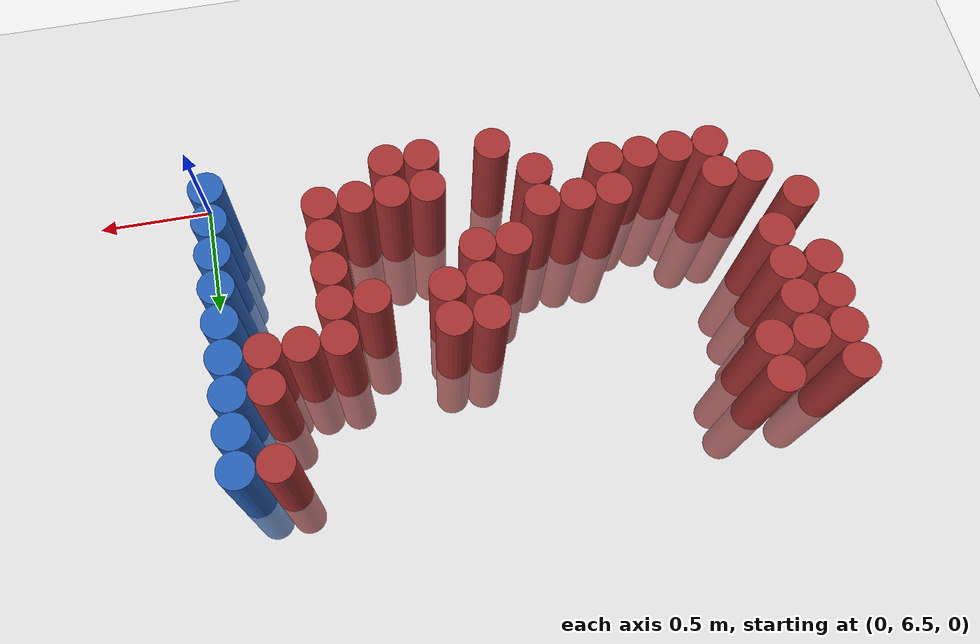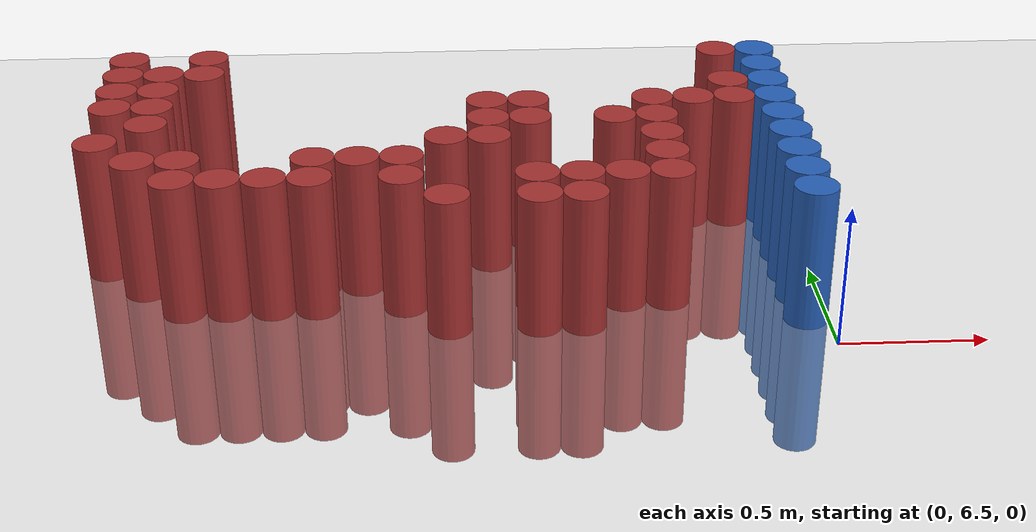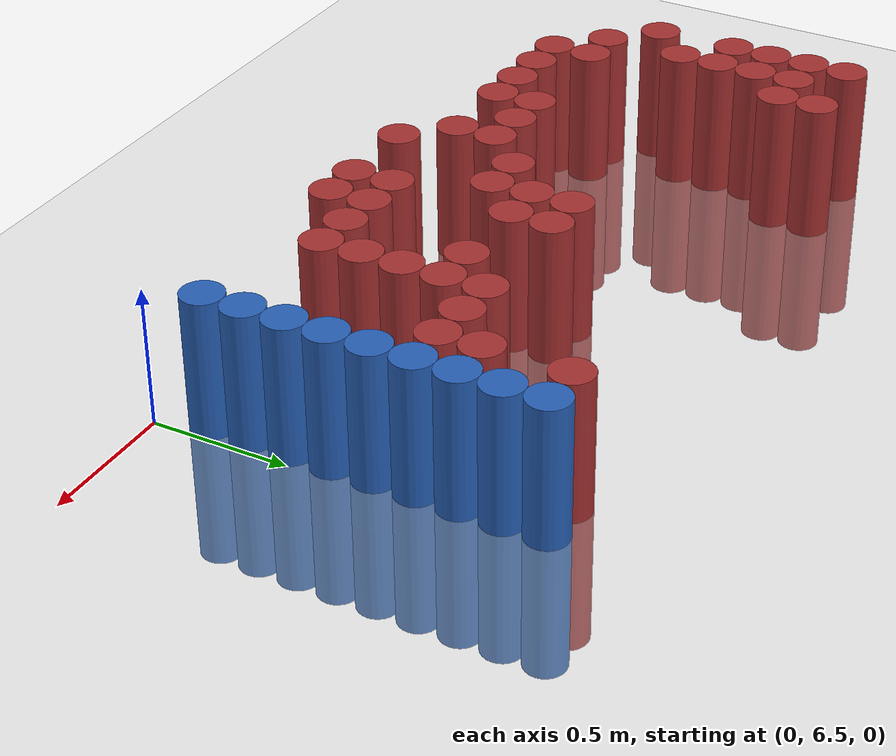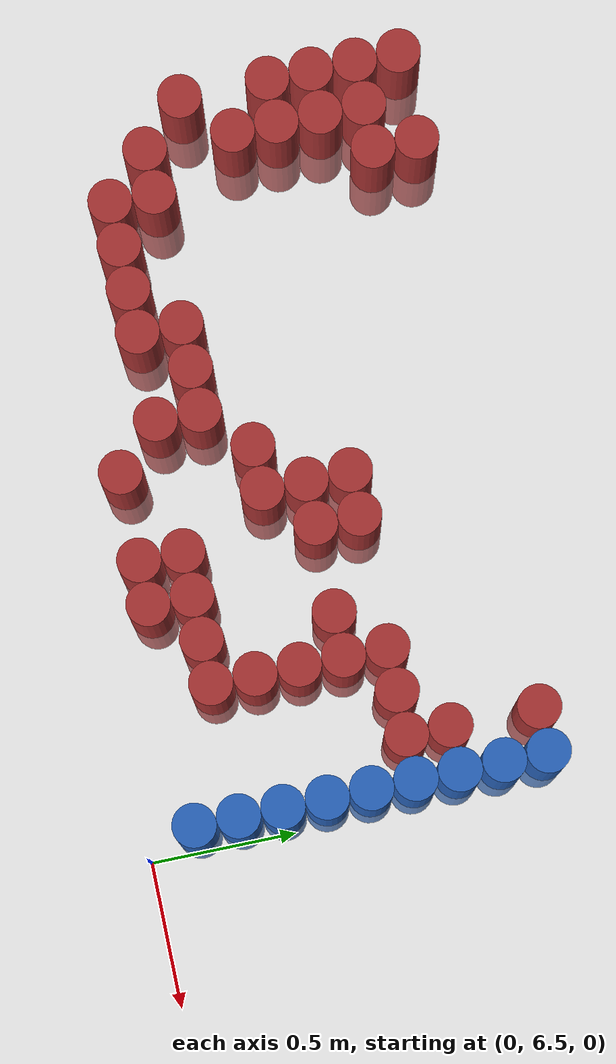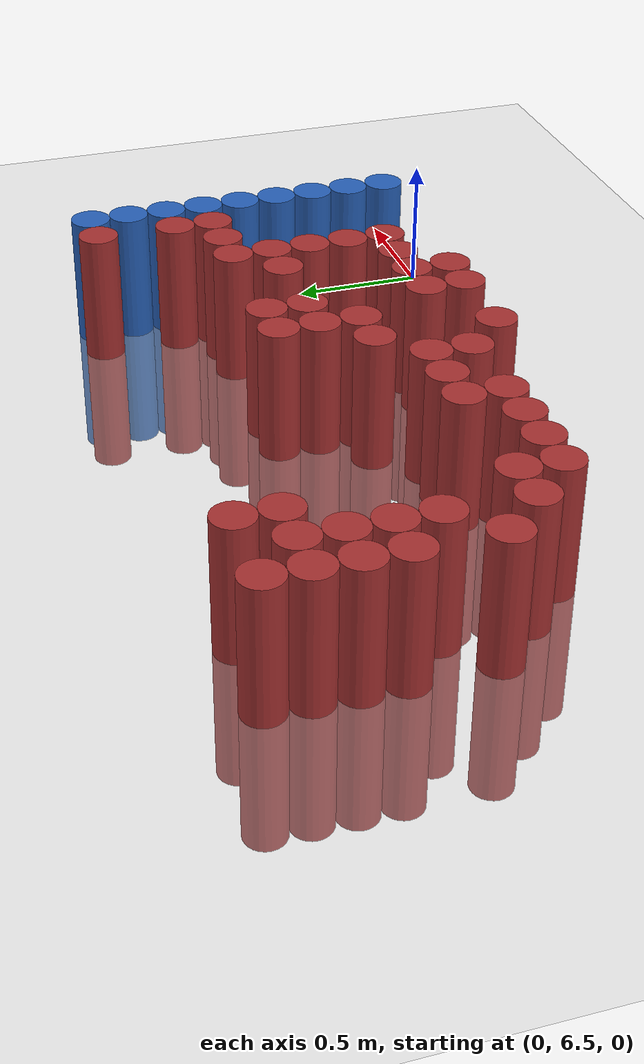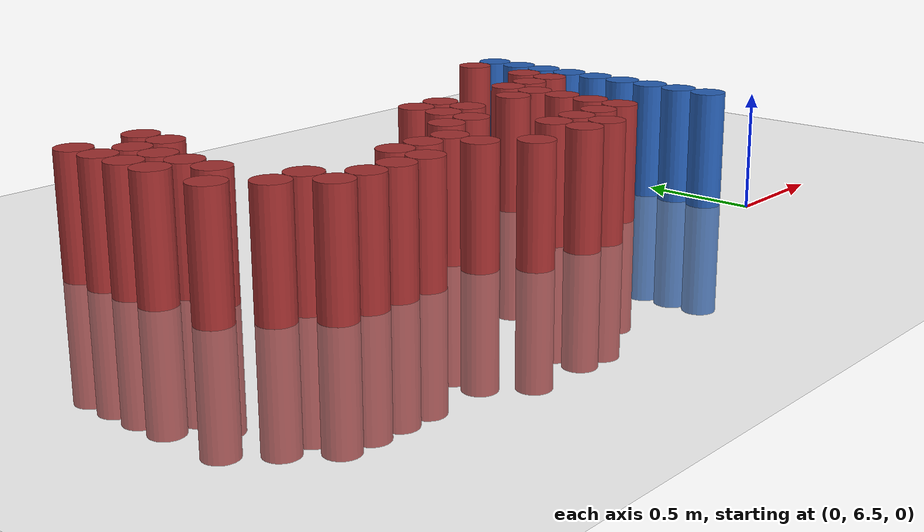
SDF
<sdf version="1.6">
 <world name="default">
  <model name="ground_plane">
   <static>1</static>
   <link name="link">
    <collision name="collision">
     <geometry><plane><normal>0 0 1</normal><size>100 100</size></plane></geometry>
     <surface><friction><ode><mu>100</mu><mu2>50</mu2></ode></friction></surface>
    </collision>
    <visual name="visual">
     <cast_shadows>0</cast_shadows>
     <geometry><plane><normal>0 0 1</normal><size>100 100</size></plane></geometry>
     <material>
      <script><uri>file://media/materials/scripts/gazebo.material</uri><name>Gazebo/Grey</name></script>
     </material>
    </visual>
   </link>
  </model>
  <model name="unit_cylinder_171">
   <static>1</static>
   <pose>-2.475000 7.125000 0.000000 0.000000 0.000000 0.000000</pose>
   <link name="link">
    <inertial>
     <mass>1</mass>
     <inertia><ixx>0.145833</ixx><ixy>0</ixy><ixz>0</ixz><iyy>0.145833</iyy><iyz>0</iyz><izz>0.125</izz></inertia>
    </inertial>
    <collision name="collision">
     <geometry><cylinder><radius>0.075000</radius><length>1</length></cylinder></geometry>
    </collision>
    <visual name="visual">
     <geometry><cylinder><radius>0.075000</radius><length>1</length></cylinder></geometry>
     <material>
      <ambient>0.648000 0.192000 0.192000 1</ambient>
      <diffuse>0.648000 0.192000 0.192000 1</diffuse>
     </material>
     <material>
      <script><name>Gazebo/Grey</name><uri>file://media/materials/scripts/gazebo.material</uri></script>
     </material>
    </visual>
   </link>
  </model>
  <model name="unit_cylinder_172">
   <static>1</static>
   <pose>-2.475000 7.425000 0.000000 0.000000 0.000000 0.000000</pose>
   <link name="link">
    <inertial>
     <mass>1</mass>
     <inertia><ixx>0.145833</ixx><ixy>0</ixy><ixz>0</ixz><iyy>0.145833</iyy><iyz>0</iyz><izz>0.125</izz></inertia>
    </inertial>
    <collision name="collision">
     <geometry><cylinder><radius>0.075000</radius><length>1</length></cylinder></geometry>
    </collision>
    <visual name="visual">
     <geometry><cylinder><radius>0.075000</radius><length>1</length></cylinder></geometry>
     <material>
      <ambient>0.648000 0.192000 0.192000 1</ambient>
      <diffuse>0.648000 0.192000 0.192000 1</diffuse>
     </material>
     <material>
      <script><name>Gazebo/Grey</name><uri>file://media/materials/scripts/gazebo.material</uri></script>
     </material>
    </visual>
   </link>
  </model>
  <model name="unit_cylinder_173">
   <static>1</static>
   <pose>-2.475000 7.575000 0.000000 0.000000 0.000000 0.000000</pose>
   <link name="link">
    <inertial>
     <mass>1</mass>
     <inertia><ixx>0.145833</ixx><ixy>0</ixy><ixz>0</ixz><iyy>0.145833</iyy><iyz>0</iyz><izz>0.125</izz></inertia>
    </inertial>
    <collision name="collision">
     <geometry><cylinder><radius>0.075000</radius><length>1</length></cylinder></geometry>
    </collision>
    <visual name="visual">
     <geometry><cylinder><radius>0.075000</radius><length>1</length></cylinder></geometry>
     <material>
      <ambient>0.648000 0.192000 0.192000 1</ambient>
      <diffuse>0.648000 0.192000 0.192000 1</diffuse>
     </material>
     <material>
      <script><name>Gazebo/Grey</name><uri>file://media/materials/scripts/gazebo.material</uri></script>
     </material>
    </visual>
   </link>
  </model>
  <model name="unit_cylinder_174">
   <static>1</static>
   <pose>-2.475000 7.725000 0.000000 0.000000 0.000000 0.000000</pose>
   <link name="link">
    <inertial>
     <mass>1</mass>
     <inertia><ixx>0.145833</ixx><ixy>0</ixy><ixz>0</ixz><iyy>0.145833</iyy><iyz>0</iyz><izz>0.125</izz></inertia>
    </inertial>
    <collision name="collision">
     <geometry><cylinder><radius>0.075000</radius><length>1</length></cylinder></geometry>
    </collision>
    <visual name="visual">
     <geometry><cylinder><radius>0.075000</radius><length>1</length></cylinder></geometry>
     <material>
      <ambient>0.648000 0.192000 0.192000 1</ambient>
      <diffuse>0.648000 0.192000 0.192000 1</diffuse>
     </material>
     <material>
      <script><name>Gazebo/Grey</name><uri>file://media/materials/scripts/gazebo.material</uri></script>
     </material>
    </visual>
   </link>
  </model>
  <model name="unit_cylinder_175">
   <static>1</static>
   <pose>-2.475000 7.875000 0.000000 0.000000 0.000000 0.000000</pose>
   <link name="link">
    <inertial>
     <mass>1</mass>
     <inertia><ixx>0.145833</ixx><ixy>0</ixy><ixz>0</ixz><iyy>0.145833</iyy><iyz>0</iyz><izz>0.125</izz></inertia>
    </inertial>
    <collision name="collision">
     <geometry><cylinder><radius>0.075000</radius><length>1</length></cylinder></geometry>
    </collision>
    <visual name="visual">
     <geometry><cylinder><radius>0.075000</radius><length>1</length></cylinder></geometry>
     <material>
      <ambient>0.648000 0.192000 0.192000 1</ambient>
      <diffuse>0.648000 0.192000 0.192000 1</diffuse>
     </material>
     <material>
      <script><name>Gazebo/Grey</name><uri>file://media/materials/scripts/gazebo.material</uri></script>
     </material>
    </visual>
   </link>
  </model>
  <model name="unit_cylinder_182">
   <static>1</static>
   <pose>-2.325000 6.975000 0.000000 0.000000 0.000000 0.000000</pose>
   <link name="link">
    <inertial>
     <mass>1</mass>
     <inertia><ixx>0.145833</ixx><ixy>0</ixy><ixz>0</ixz><iyy>0.145833</iyy><iyz>0</iyz><izz>0.125</izz></inertia>
    </inertial>
    <collision name="collision">
     <geometry><cylinder><radius>0.075000</radius><length>1</length></cylinder></geometry>
    </collision>
    <visual name="visual">
     <geometry><cylinder><radius>0.075000</radius><length>1</length></cylinder></geometry>
     <material>
      <ambient>0.648000 0.192000 0.192000 1</ambient>
      <diffuse>0.648000 0.192000 0.192000 1</diffuse>
     </material>
     <material>
      <script><name>Gazebo/Grey</name><uri>file://media/materials/scripts/gazebo.material</uri></script>
     </material>
    </visual>
   </link>
  </model>
  <model name="unit_cylinder_183">
   <static>1</static>
   <pose>-2.325000 7.275000 0.000000 0.000000 0.000000 0.000000</pose>
   <link name="link">
    <inertial>
     <mass>1</mass>
     <inertia><ixx>0.145833</ixx><ixy>0</ixy><ixz>0</ixz><iyy>0.145833</iyy><iyz>0</iyz><izz>0.125</izz></inertia>
    </inertial>
    <collision name="collision">
     <geometry><cylinder><radius>0.075000</radius><length>1</length></cylinder></geometry>
    </collision>
    <visual name="visual">
     <geometry><cylinder><radius>0.075000</radius><length>1</length></cylinder></geometry>
     <material>
      <ambient>0.648000 0.192000 0.192000 1</ambient>
      <diffuse>0.648000 0.192000 0.192000 1</diffuse>
     </material>
     <material>
      <script><name>Gazebo/Grey</name><uri>file://media/materials/scripts/gazebo.material</uri></script>
     </material>
    </visual>
   </link>
  </model>
  <model name="unit_cylinder_184">
   <static>1</static>
   <pose>-2.325000 7.425000 0.000000 0.000000 0.000000 0.000000</pose>
   <link name="link">
    <inertial>
     <mass>1</mass>
     <inertia><ixx>0.145833</ixx><ixy>0</ixy><ixz>0</ixz><iyy>0.145833</iyy><iyz>0</iyz><izz>0.125</izz></inertia>
    </inertial>
    <collision name="collision">
     <geometry><cylinder><radius>0.075000</radius><length>1</length></cylinder></geometry>
    </collision>
    <visual name="visual">
     <geometry><cylinder><radius>0.075000</radius><length>1</length></cylinder></geometry>
     <material>
      <ambient>0.648000 0.192000 0.192000 1</ambient>
      <diffuse>0.648000 0.192000 0.192000 1</diffuse>
     </material>
     <material>
      <script><name>Gazebo/Grey</name><uri>file://media/materials/scripts/gazebo.material</uri></script>
     </material>
    </visual>
   </link>
  </model>
  <model name="unit_cylinder_185">
   <static>1</static>
   <pose>-2.325000 7.575000 0.000000 0.000000 0.000000 0.000000</pose>
   <link name="link">
    <inertial>
     <mass>1</mass>
     <inertia><ixx>0.145833</ixx><ixy>0</ixy><ixz>0</ixz><iyy>0.145833</iyy><iyz>0</iyz><izz>0.125</izz></inertia>
    </inertial>
    <collision name="collision">
     <geometry><cylinder><radius>0.075000</radius><length>1</length></cylinder></geometry>
    </collision>
    <visual name="visual">
     <geometry><cylinder><radius>0.075000</radius><length>1</length></cylinder></geometry>
     <material>
      <ambient>0.648000 0.192000 0.192000 1</ambient>
      <diffuse>0.648000 0.192000 0.192000 1</diffuse>
     </material>
     <material>
      <script><name>Gazebo/Grey</name><uri>file://media/materials/scripts/gazebo.material</uri></script>
     </material>
    </visual>
   </link>
  </model>
  <model name="unit_cylinder_186">
   <static>1</static>
   <pose>-2.325000 7.725000 0.000000 0.000000 0.000000 0.000000</pose>
   <link name="link">
    <inertial>
     <mass>1</mass>
     <inertia><ixx>0.145833</ixx><ixy>0</ixy><ixz>0</ixz><iyy>0.145833</iyy><iyz>0</iyz><izz>0.125</izz></inertia>
    </inertial>
    <collision name="collision">
     <geometry><cylinder><radius>0.075000</radius><length>1</length></cylinder></geometry>
    </collision>
    <visual name="visual">
     <geometry><cylinder><radius>0.075000</radius><length>1</length></cylinder></geometry>
     <material>
      <ambient>0.648000 0.192000 0.192000 1</ambient>
      <diffuse>0.648000 0.192000 0.192000 1</diffuse>
     </material>
     <material>
      <script><name>Gazebo/Grey</name><uri>file://media/materials/scripts/gazebo.material</uri></script>
     </material>
    </visual>
   </link>
  </model>
  <model name="unit_cylinder_192">
   <static>1</static>
   <pose>-2.175000 6.825000 0.000000 0.000000 0.000000 0.000000</pose>
   <link name="link">
    <inertial>
     <mass>1</mass>
     <inertia><ixx>0.145833</ixx><ixy>0</ixy><ixz>0</ixz><iyy>0.145833</iyy><iyz>0</iyz><izz>0.125</izz></inertia>
    </inertial>
    <collision name="collision">
     <geometry><cylinder><radius>0.075000</radius><length>1</length></cylinder></geometry>
    </collision>
    <visual name="visual">
     <geometry><cylinder><radius>0.075000</radius><length>1</length></cylinder></geometry>
     <material>
      <ambient>0.648000 0.192000 0.192000 1</ambient>
      <diffuse>0.648000 0.192000 0.192000 1</diffuse>
     </material>
     <material>
      <script><name>Gazebo/Grey</name><uri>file://media/materials/scripts/gazebo.material</uri></script>
     </material>
    </visual>
   </link>
  </model>
  <model name="unit_cylinder_193">
   <static>1</static>
   <pose>-2.175000 6.975000 0.000000 0.000000 0.000000 0.000000</pose>
   <link name="link">
    <inertial>
     <mass>1</mass>
     <inertia><ixx>0.145833</ixx><ixy>0</ixy><ixz>0</ixz><iyy>0.145833</iyy><iyz>0</iyz><izz>0.125</izz></inertia>
    </inertial>
    <collision name="collision">
     <geometry><cylinder><radius>0.075000</radius><length>1</length></cylinder></geometry>
    </collision>
    <visual name="visual">
     <geometry><cylinder><radius>0.075000</radius><length>1</length></cylinder></geometry>
     <material>
      <ambient>0.648000 0.192000 0.192000 1</ambient>
      <diffuse>0.648000 0.192000 0.192000 1</diffuse>
     </material>
     <material>
      <script><name>Gazebo/Grey</name><uri>file://media/materials/scripts/gazebo.material</uri></script>
     </material>
    </visual>
   </link>
  </model>
  <model name="unit_cylinder_194">
   <static>1</static>
   <pose>-2.175000 7.725000 0.000000 0.000000 0.000000 0.000000</pose>
   <link name="link">
    <inertial>
     <mass>1</mass>
     <inertia><ixx>0.145833</ixx><ixy>0</ixy><ixz>0</ixz><iyy>0.145833</iyy><iyz>0</iyz><izz>0.125</izz></inertia>
    </inertial>
    <collision name="collision">
     <geometry><cylinder><radius>0.075000</radius><length>1</length></cylinder></geometry>
    </collision>
    <visual name="visual">
     <geometry><cylinder><radius>0.075000</radius><length>1</length></cylinder></geometry>
     <material>
      <ambient>0.648000 0.192000 0.192000 1</ambient>
      <diffuse>0.648000 0.192000 0.192000 1</diffuse>
     </material>
     <material>
      <script><name>Gazebo/Grey</name><uri>file://media/materials/scripts/gazebo.material</uri></script>
     </material>
    </visual>
   </link>
  </model>
  <model name="unit_cylinder_195">
   <static>1</static>
   <pose>-2.175000 7.875000 0.000000 0.000000 0.000000 0.000000</pose>
   <link name="link">
    <inertial>
     <mass>1</mass>
     <inertia><ixx>0.145833</ixx><ixy>0</ixy><ixz>0</ixz><iyy>0.145833</iyy><iyz>0</iyz><izz>0.125</izz></inertia>
    </inertial>
    <collision name="collision">
     <geometry><cylinder><radius>0.075000</radius><length>1</length></cylinder></geometry>
    </collision>
    <visual name="visual">
     <geometry><cylinder><radius>0.075000</radius><length>1</length></cylinder></geometry>
     <material>
      <ambient>0.648000 0.192000 0.192000 1</ambient>
      <diffuse>0.648000 0.192000 0.192000 1</diffuse>
     </material>
     <material>
      <script><name>Gazebo/Grey</name><uri>file://media/materials/scripts/gazebo.material</uri></script>
     </material>
    </visual>
   </link>
  </model>
  <model name="unit_cylinder_197">
   <static>1</static>
   <pose>-2.025000 6.825000 0.000000 0.000000 0.000000 0.000000</pose>
   <link name="link">
    <inertial>
     <mass>1</mass>
     <inertia><ixx>0.145833</ixx><ixy>0</ixy><ixz>0</ixz><iyy>0.145833</iyy><iyz>0</iyz><izz>0.125</izz></inertia>
    </inertial>
    <collision name="collision">
     <geometry><cylinder><radius>0.075000</radius><length>1</length></cylinder></geometry>
    </collision>
    <visual name="visual">
     <geometry><cylinder><radius>0.075000</radius><length>1</length></cylinder></geometry>
     <material>
      <ambient>0.648000 0.192000 0.192000 1</ambient>
      <diffuse>0.648000 0.192000 0.192000 1</diffuse>
     </material>
     <material>
      <script><name>Gazebo/Grey</name><uri>file://media/materials/scripts/gazebo.material</uri></script>
     </material>
    </visual>
   </link>
  </model>
  <model name="unit_cylinder_199">
   <static>1</static>
   <pose>-1.875000 6.825000 0.000000 0.000000 0.000000 0.000000</pose>
   <link name="link">
    <inertial>
     <mass>1</mass>
     <inertia><ixx>0.145833</ixx><ixy>0</ixy><ixz>0</ixz><iyy>0.145833</iyy><iyz>0</iyz><izz>0.125</izz></inertia>
    </inertial>
    <collision name="collision">
     <geometry><cylinder><radius>0.075000</radius><length>1</length></cylinder></geometry>
    </collision>
    <visual name="visual">
     <geometry><cylinder><radius>0.075000</radius><length>1</length></cylinder></geometry>
     <material>
      <ambient>0.648000 0.192000 0.192000 1</ambient>
      <diffuse>0.648000 0.192000 0.192000 1</diffuse>
     </material>
     <material>
      <script><name>Gazebo/Grey</name><uri>file://media/materials/scripts/gazebo.material</uri></script>
     </material>
    </visual>
   </link>
  </model>
  <model name="unit_cylinder_202">
   <static>1</static>
   <pose>-1.725000 6.825000 0.000000 0.000000 0.000000 0.000000</pose>
   <link name="link">
    <inertial>
     <mass>1</mass>
     <inertia><ixx>0.145833</ixx><ixy>0</ixy><ixz>0</ixz><iyy>0.145833</iyy><iyz>0</iyz><izz>0.125</izz></inertia>
    </inertial>
    <collision name="collision">
     <geometry><cylinder><radius>0.075000</radius><length>1</length></cylinder></geometry>
    </collision>
    <visual name="visual">
     <geometry><cylinder><radius>0.075000</radius><length>1</length></cylinder></geometry>
     <material>
      <ambient>0.648000 0.192000 0.192000 1</ambient>
      <diffuse>0.648000 0.192000 0.192000 1</diffuse>
     </material>
     <material>
      <script><name>Gazebo/Grey</name><uri>file://media/materials/scripts/gazebo.material</uri></script>
     </material>
    </visual>
   </link>
  </model>
  <model name="unit_cylinder_203">
   <static>1</static>
   <pose>-1.725000 6.975000 0.000000 0.000000 0.000000 0.000000</pose>
   <link name="link">
    <inertial>
     <mass>1</mass>
     <inertia><ixx>0.145833</ixx><ixy>0</ixy><ixz>0</ixz><iyy>0.145833</iyy><iyz>0</iyz><izz>0.125</izz></inertia>
    </inertial>
    <collision name="collision">
     <geometry><cylinder><radius>0.075000</radius><length>1</length></cylinder></geometry>
    </collision>
    <visual name="visual">
     <geometry><cylinder><radius>0.075000</radius><length>1</length></cylinder></geometry>
     <material>
      <ambient>0.648000 0.192000 0.192000 1</ambient>
      <diffuse>0.648000 0.192000 0.192000 1</diffuse>
     </material>
     <material>
      <script><name>Gazebo/Grey</name><uri>file://media/materials/scripts/gazebo.material</uri></script>
     </material>
    </visual>
   </link>
  </model>
  <model name="unit_cylinder_208">
   <static>1</static>
   <pose>-1.575000 6.975000 0.000000 0.000000 0.000000 0.000000</pose>
   <link name="link">
    <inertial>
     <mass>1</mass>
     <inertia><ixx>0.145833</ixx><ixy>0</ixy><ixz>0</ixz><iyy>0.145833</iyy><iyz>0</iyz><izz>0.125</izz></inertia>
    </inertial>
    <collision name="collision">
     <geometry><cylinder><radius>0.075000</radius><length>1</length></cylinder></geometry>
    </collision>
    <visual name="visual">
     <geometry><cylinder><radius>0.075000</radius><length>1</length></cylinder></geometry>
     <material>
      <ambient>0.648000 0.192000 0.192000 1</ambient>
      <diffuse>0.648000 0.192000 0.192000 1</diffuse>
     </material>
     <material>
      <script><name>Gazebo/Grey</name><uri>file://media/materials/scripts/gazebo.material</uri></script>
     </material>
    </visual>
   </link>
  </model>
  <model name="unit_cylinder_217">
   <static>1</static>
   <pose>-1.425000 6.825000 0.000000 0.000000 0.000000 0.000000</pose>
   <link name="link">
    <inertial>
     <mass>1</mass>
     <inertia><ixx>0.145833</ixx><ixy>0</ixy><ixz>0</ixz><iyy>0.145833</iyy><iyz>0</iyz><izz>0.125</izz></inertia>
    </inertial>
    <collision name="collision">
     <geometry><cylinder><radius>0.075000</radius><length>1</length></cylinder></geometry>
    </collision>
    <visual name="visual">
     <geometry><cylinder><radius>0.075000</radius><length>1</length></cylinder></geometry>
     <material>
      <ambient>0.648000 0.192000 0.192000 1</ambient>
      <diffuse>0.648000 0.192000 0.192000 1</diffuse>
     </material>
     <material>
      <script><name>Gazebo/Grey</name><uri>file://media/materials/scripts/gazebo.material</uri></script>
     </material>
    </visual>
   </link>
  </model>
  <model name="unit_cylinder_218">
   <static>1</static>
   <pose>-1.425000 6.975000 0.000000 0.000000 0.000000 0.000000</pose>
   <link name="link">
    <inertial>
     <mass>1</mass>
     <inertia><ixx>0.145833</ixx><ixy>0</ixy><ixz>0</ixz><iyy>0.145833</iyy><iyz>0</iyz><izz>0.125</izz></inertia>
    </inertial>
    <collision name="collision">
     <geometry><cylinder><radius>0.075000</radius><length>1</length></cylinder></geometry>
    </collision>
    <visual name="visual">
     <geometry><cylinder><radius>0.075000</radius><length>1</length></cylinder></geometry>
     <material>
      <ambient>0.648000 0.192000 0.192000 1</ambient>
      <diffuse>0.648000 0.192000 0.192000 1</diffuse>
     </material>
     <material>
      <script><name>Gazebo/Grey</name><uri>file://media/materials/scripts/gazebo.material</uri></script>
     </material>
    </visual>
   </link>
  </model>
  <model name="unit_cylinder_224">
   <static>1</static>
   <pose>-1.275000 6.675000 0.000000 0.000000 0.000000 0.000000</pose>
   <link name="link">
    <inertial>
     <mass>1</mass>
     <inertia><ixx>0.145833</ixx><ixy>0</ixy><ixz>0</ixz><iyy>0.145833</iyy><iyz>0</iyz><izz>0.125</izz></inertia>
    </inertial>
    <collision name="collision">
     <geometry><cylinder><radius>0.075000</radius><length>1</length></cylinder></geometry>
    </collision>
    <visual name="visual">
     <geometry><cylinder><radius>0.075000</radius><length>1</length></cylinder></geometry>
     <material>
      <ambient>0.648000 0.192000 0.192000 1</ambient>
      <diffuse>0.648000 0.192000 0.192000 1</diffuse>
     </material>
     <material>
      <script><name>Gazebo/Grey</name><uri>file://media/materials/scripts/gazebo.material</uri></script>
     </material>
    </visual>
   </link>
  </model>
  <model name="unit_cylinder_225">
   <static>1</static>
   <pose>-1.275000 7.125000 0.000000 0.000000 0.000000 0.000000</pose>
   <link name="link">
    <inertial>
     <mass>1</mass>
     <inertia><ixx>0.145833</ixx><ixy>0</ixy><ixz>0</ixz><iyy>0.145833</iyy><iyz>0</iyz><izz>0.125</izz></inertia>
    </inertial>
    <collision name="collision">
     <geometry><cylinder><radius>0.075000</radius><length>1</length></cylinder></geometry>
    </collision>
    <visual name="visual">
     <geometry><cylinder><radius>0.075000</radius><length>1</length></cylinder></geometry>
     <material>
      <ambient>0.648000 0.192000 0.192000 1</ambient>
      <diffuse>0.648000 0.192000 0.192000 1</diffuse>
     </material>
     <material>
      <script><name>Gazebo/Grey</name><uri>file://media/materials/scripts/gazebo.material</uri></script>
     </material>
    </visual>
   </link>
  </model>
  <model name="unit_cylinder_229">
   <static>1</static>
   <pose>-1.125000 7.125000 0.000000 0.000000 0.000000 0.000000</pose>
   <link name="link">
    <inertial>
     <mass>1</mass>
     <inertia><ixx>0.145833</ixx><ixy>0</ixy><ixz>0</ixz><iyy>0.145833</iyy><iyz>0</iyz><izz>0.125</izz></inertia>
    </inertial>
    <collision name="collision">
     <geometry><cylinder><radius>0.075000</radius><length>1</length></cylinder></geometry>
    </collision>
    <visual name="visual">
     <geometry><cylinder><radius>0.075000</radius><length>1</length></cylinder></geometry>
     <material>
      <ambient>0.648000 0.192000 0.192000 1</ambient>
      <diffuse>0.648000 0.192000 0.192000 1</diffuse>
     </material>
     <material>
      <script><name>Gazebo/Grey</name><uri>file://media/materials/scripts/gazebo.material</uri></script>
     </material>
    </visual>
   </link>
  </model>
  <model name="unit_cylinder_230">
   <static>1</static>
   <pose>-1.125000 7.275000 0.000000 0.000000 0.000000 0.000000</pose>
   <link name="link">
    <inertial>
     <mass>1</mass>
     <inertia><ixx>0.145833</ixx><ixy>0</ixy><ixz>0</ixz><iyy>0.145833</iyy><iyz>0</iyz><izz>0.125</izz></inertia>
    </inertial>
    <collision name="collision">
     <geometry><cylinder><radius>0.075000</radius><length>1</length></cylinder></geometry>
    </collision>
    <visual name="visual">
     <geometry><cylinder><radius>0.075000</radius><length>1</length></cylinder></geometry>
     <material>
      <ambient>0.648000 0.192000 0.192000 1</ambient>
      <diffuse>0.648000 0.192000 0.192000 1</diffuse>
     </material>
     <material>
      <script><name>Gazebo/Grey</name><uri>file://media/materials/scripts/gazebo.material</uri></script>
     </material>
    </visual>
   </link>
  </model>
  <model name="unit_cylinder_231">
   <static>1</static>
   <pose>-1.125000 7.425000 0.000000 0.000000 0.000000 0.000000</pose>
   <link name="link">
    <inertial>
     <mass>1</mass>
     <inertia><ixx>0.145833</ixx><ixy>0</ixy><ixz>0</ixz><iyy>0.145833</iyy><iyz>0</iyz><izz>0.125</izz></inertia>
    </inertial>
    <collision name="collision">
     <geometry><cylinder><radius>0.075000</radius><length>1</length></cylinder></geometry>
    </collision>
    <visual name="visual">
     <geometry><cylinder><radius>0.075000</radius><length>1</length></cylinder></geometry>
     <material>
      <ambient>0.648000 0.192000 0.192000 1</ambient>
      <diffuse>0.648000 0.192000 0.192000 1</diffuse>
     </material>
     <material>
      <script><name>Gazebo/Grey</name><uri>file://media/materials/scripts/gazebo.material</uri></script>
     </material>
    </visual>
   </link>
  </model>
  <model name="unit_cylinder_239">
   <static>1</static>
   <pose>-0.975000 6.675000 0.000000 0.000000 0.000000 0.000000</pose>
   <link name="link">
    <inertial>
     <mass>1</mass>
     <inertia><ixx>0.145833</ixx><ixy>0</ixy><ixz>0</ixz><iyy>0.145833</iyy><iyz>0</iyz><izz>0.125</izz></inertia>
    </inertial>
    <collision name="collision">
     <geometry><cylinder><radius>0.075000</radius><length>1</length></cylinder></geometry>
    </collision>
    <visual name="visual">
     <geometry><cylinder><radius>0.075000</radius><length>1</length></cylinder></geometry>
     <material>
      <ambient>0.648000 0.192000 0.192000 1</ambient>
      <diffuse>0.648000 0.192000 0.192000 1</diffuse>
     </material>
     <material>
      <script><name>Gazebo/Grey</name><uri>file://media/materials/scripts/gazebo.material</uri></script>
     </material>
    </visual>
   </link>
  </model>
  <model name="unit_cylinder_240">
   <static>1</static>
   <pose>-0.975000 6.825000 0.000000 0.000000 0.000000 0.000000</pose>
   <link name="link">
    <inertial>
     <mass>1</mass>
     <inertia><ixx>0.145833</ixx><ixy>0</ixy><ixz>0</ixz><iyy>0.145833</iyy><iyz>0</iyz><izz>0.125</izz></inertia>
    </inertial>
    <collision name="collision">
     <geometry><cylinder><radius>0.075000</radius><length>1</length></cylinder></geometry>
    </collision>
    <visual name="visual">
     <geometry><cylinder><radius>0.075000</radius><length>1</length></cylinder></geometry>
     <material>
      <ambient>0.648000 0.192000 0.192000 1</ambient>
      <diffuse>0.648000 0.192000 0.192000 1</diffuse>
     </material>
     <material>
      <script><name>Gazebo/Grey</name><uri>file://media/materials/scripts/gazebo.material</uri></script>
     </material>
    </visual>
   </link>
  </model>
  <model name="unit_cylinder_241">
   <static>1</static>
   <pose>-0.975000 7.275000 0.000000 0.000000 0.000000 0.000000</pose>
   <link name="link">
    <inertial>
     <mass>1</mass>
     <inertia><ixx>0.145833</ixx><ixy>0</ixy><ixz>0</ixz><iyy>0.145833</iyy><iyz>0</iyz><izz>0.125</izz></inertia>
    </inertial>
    <collision name="collision">
     <geometry><cylinder><radius>0.075000</radius><length>1</length></cylinder></geometry>
    </collision>
    <visual name="visual">
     <geometry><cylinder><radius>0.075000</radius><length>1</length></cylinder></geometry>
     <material>
      <ambient>0.648000 0.192000 0.192000 1</ambient>
      <diffuse>0.648000 0.192000 0.192000 1</diffuse>
     </material>
     <material>
      <script><name>Gazebo/Grey</name><uri>file://media/materials/scripts/gazebo.material</uri></script>
     </material>
    </visual>
   </link>
  </model>
  <model name="unit_cylinder_242">
   <static>1</static>
   <pose>-0.975000 7.425000 0.000000 0.000000 0.000000 0.000000</pose>
   <link name="link">
    <inertial>
     <mass>1</mass>
     <inertia><ixx>0.145833</ixx><ixy>0</ixy><ixz>0</ixz><iyy>0.145833</iyy><iyz>0</iyz><izz>0.125</izz></inertia>
    </inertial>
    <collision name="collision">
     <geometry><cylinder><radius>0.075000</radius><length>1</length></cylinder></geometry>
    </collision>
    <visual name="visual">
     <geometry><cylinder><radius>0.075000</radius><length>1</length></cylinder></geometry>
     <material>
      <ambient>0.648000 0.192000 0.192000 1</ambient>
      <diffuse>0.648000 0.192000 0.192000 1</diffuse>
     </material>
     <material>
      <script><name>Gazebo/Grey</name><uri>file://media/materials/scripts/gazebo.material</uri></script>
     </material>
    </visual>
   </link>
  </model>
  <model name="unit_cylinder_250">
   <static>1</static>
   <pose>-0.825000 6.675000 0.000000 0.000000 0.000000 0.000000</pose>
   <link name="link">
    <inertial>
     <mass>1</mass>
     <inertia><ixx>0.145833</ixx><ixy>0</ixy><ixz>0</ixz><iyy>0.145833</iyy><iyz>0</iyz><izz>0.125</izz></inertia>
    </inertial>
    <collision name="collision">
     <geometry><cylinder><radius>0.075000</radius><length>1</length></cylinder></geometry>
    </collision>
    <visual name="visual">
     <geometry><cylinder><radius>0.075000</radius><length>1</length></cylinder></geometry>
     <material>
      <ambient>0.648000 0.192000 0.192000 1</ambient>
      <diffuse>0.648000 0.192000 0.192000 1</diffuse>
     </material>
     <material>
      <script><name>Gazebo/Grey</name><uri>file://media/materials/scripts/gazebo.material</uri></script>
     </material>
    </visual>
   </link>
  </model>
  <model name="unit_cylinder_251">
   <static>1</static>
   <pose>-0.825000 6.825000 0.000000 0.000000 0.000000 0.000000</pose>
   <link name="link">
    <inertial>
     <mass>1</mass>
     <inertia><ixx>0.145833</ixx><ixy>0</ixy><ixz>0</ixz><iyy>0.145833</iyy><iyz>0</iyz><izz>0.125</izz></inertia>
    </inertial>
    <collision name="collision">
     <geometry><cylinder><radius>0.075000</radius><length>1</length></cylinder></geometry>
    </collision>
    <visual name="visual">
     <geometry><cylinder><radius>0.075000</radius><length>1</length></cylinder></geometry>
     <material>
      <ambient>0.648000 0.192000 0.192000 1</ambient>
      <diffuse>0.648000 0.192000 0.192000 1</diffuse>
     </material>
     <material>
      <script><name>Gazebo/Grey</name><uri>file://media/materials/scripts/gazebo.material</uri></script>
     </material>
    </visual>
   </link>
  </model>
  <model name="unit_cylinder_259">
   <static>1</static>
   <pose>-0.675000 6.825000 0.000000 0.000000 0.000000 0.000000</pose>
   <link name="link">
    <inertial>
     <mass>1</mass>
     <inertia><ixx>0.145833</ixx><ixy>0</ixy><ixz>0</ixz><iyy>0.145833</iyy><iyz>0</iyz><izz>0.125</izz></inertia>
    </inertial>
    <collision name="collision">
     <geometry><cylinder><radius>0.075000</radius><length>1</length></cylinder></geometry>
    </collision>
    <visual name="visual">
     <geometry><cylinder><radius>0.075000</radius><length>1</length></cylinder></geometry>
     <material>
      <ambient>0.648000 0.192000 0.192000 1</ambient>
      <diffuse>0.648000 0.192000 0.192000 1</diffuse>
     </material>
     <material>
      <script><name>Gazebo/Grey</name><uri>file://media/materials/scripts/gazebo.material</uri></script>
     </material>
    </visual>
   </link>
  </model>
  <model name="unit_cylinder_260">
   <static>1</static>
   <pose>-0.675000 7.275000 0.000000 0.000000 0.000000 0.000000</pose>
   <link name="link">
    <inertial>
     <mass>1</mass>
     <inertia><ixx>0.145833</ixx><ixy>0</ixy><ixz>0</ixz><iyy>0.145833</iyy><iyz>0</iyz><izz>0.125</izz></inertia>
    </inertial>
    <collision name="collision">
     <geometry><cylinder><radius>0.075000</radius><length>1</length></cylinder></geometry>
    </collision>
    <visual name="visual">
     <geometry><cylinder><radius>0.075000</radius><length>1</length></cylinder></geometry>
     <material>
      <ambient>0.648000 0.192000 0.192000 1</ambient>
      <diffuse>0.648000 0.192000 0.192000 1</diffuse>
     </material>
     <material>
      <script><name>Gazebo/Grey</name><uri>file://media/materials/scripts/gazebo.material</uri></script>
     </material>
    </visual>
   </link>
  </model>
  <model name="unit_cylinder_264">
   <static>1</static>
   <pose>-0.525000 6.825000 0.000000 0.000000 0.000000 0.000000</pose>
   <link name="link">
    <inertial>
     <mass>1</mass>
     <inertia><ixx>0.145833</ixx><ixy>0</ixy><ixz>0</ixz><iyy>0.145833</iyy><iyz>0</iyz><izz>0.125</izz></inertia>
    </inertial>
    <collision name="collision">
     <geometry><cylinder><radius>0.075000</radius><length>1</length></cylinder></geometry>
    </collision>
    <visual name="visual">
     <geometry><cylinder><radius>0.075000</radius><length>1</length></cylinder></geometry>
     <material>
      <ambient>0.648000 0.192000 0.192000 1</ambient>
      <diffuse>0.648000 0.192000 0.192000 1</diffuse>
     </material>
     <material>
      <script><name>Gazebo/Grey</name><uri>file://media/materials/scripts/gazebo.material</uri></script>
     </material>
    </visual>
   </link>
  </model>
  <model name="unit_cylinder_265">
   <static>1</static>
   <pose>-0.525000 6.975000 0.000000 0.000000 0.000000 0.000000</pose>
   <link name="link">
    <inertial>
     <mass>1</mass>
     <inertia><ixx>0.145833</ixx><ixy>0</ixy><ixz>0</ixz><iyy>0.145833</iyy><iyz>0</iyz><izz>0.125</izz></inertia>
    </inertial>
    <collision name="collision">
     <geometry><cylinder><radius>0.075000</radius><length>1</length></cylinder></geometry>
    </collision>
    <visual name="visual">
     <geometry><cylinder><radius>0.075000</radius><length>1</length></cylinder></geometry>
     <material>
      <ambient>0.648000 0.192000 0.192000 1</ambient>
      <diffuse>0.648000 0.192000 0.192000 1</diffuse>
     </material>
     <material>
      <script><name>Gazebo/Grey</name><uri>file://media/materials/scripts/gazebo.material</uri></script>
     </material>
    </visual>
   </link>
  </model>
  <model name="unit_cylinder_266">
   <static>1</static>
   <pose>-0.525000 7.125000 0.000000 0.000000 0.000000 0.000000</pose>
   <link name="link">
    <inertial>
     <mass>1</mass>
     <inertia><ixx>0.145833</ixx><ixy>0</ixy><ixz>0</ixz><iyy>0.145833</iyy><iyz>0</iyz><izz>0.125</izz></inertia>
    </inertial>
    <collision name="collision">
     <geometry><cylinder><radius>0.075000</radius><length>1</length></cylinder></geometry>
    </collision>
    <visual name="visual">
     <geometry><cylinder><radius>0.075000</radius><length>1</length></cylinder></geometry>
     <material>
      <ambient>0.648000 0.192000 0.192000 1</ambient>
      <diffuse>0.648000 0.192000 0.192000 1</diffuse>
     </material>
     <material>
      <script><name>Gazebo/Grey</name><uri>file://media/materials/scripts/gazebo.material</uri></script>
     </material>
    </visual>
   </link>
  </model>
  <model name="unit_cylinder_267">
   <static>1</static>
   <pose>-0.525000 7.275000 0.000000 0.000000 0.000000 0.000000</pose>
   <link name="link">
    <inertial>
     <mass>1</mass>
     <inertia><ixx>0.145833</ixx><ixy>0</ixy><ixz>0</ixz><iyy>0.145833</iyy><iyz>0</iyz><izz>0.125</izz></inertia>
    </inertial>
    <collision name="collision">
     <geometry><cylinder><radius>0.075000</radius><length>1</length></cylinder></geometry>
    </collision>
    <visual name="visual">
     <geometry><cylinder><radius>0.075000</radius><length>1</length></cylinder></geometry>
     <material>
      <ambient>0.648000 0.192000 0.192000 1</ambient>
      <diffuse>0.648000 0.192000 0.192000 1</diffuse>
     </material>
     <material>
      <script><name>Gazebo/Grey</name><uri>file://media/materials/scripts/gazebo.material</uri></script>
     </material>
    </visual>
   </link>
  </model>
  <model name="unit_cylinder_268">
   <static>1</static>
   <pose>-0.525000 7.425000 0.000000 0.000000 0.000000 0.000000</pose>
   <link name="link">
    <inertial>
     <mass>1</mass>
     <inertia><ixx>0.145833</ixx><ixy>0</ixy><ixz>0</ixz><iyy>0.145833</iyy><iyz>0</iyz><izz>0.125</izz></inertia>
    </inertial>
    <collision name="collision">
     <geometry><cylinder><radius>0.075000</radius><length>1</length></cylinder></geometry>
    </collision>
    <visual name="visual">
     <geometry><cylinder><radius>0.075000</radius><length>1</length></cylinder></geometry>
     <material>
      <ambient>0.648000 0.192000 0.192000 1</ambient>
      <diffuse>0.648000 0.192000 0.192000 1</diffuse>
     </material>
     <material>
      <script><name>Gazebo/Grey</name><uri>file://media/materials/scripts/gazebo.material</uri></script>
     </material>
    </visual>
   </link>
  </model>
  <model name="unit_cylinder_270">
   <static>1</static>
   <pose>-0.375000 7.425000 0.000000 0.000000 0.000000 0.000000</pose>
   <link name="link">
    <inertial>
     <mass>1</mass>
     <inertia><ixx>0.145833</ixx><ixy>0</ixy><ixz>0</ixz><iyy>0.145833</iyy><iyz>0</iyz><izz>0.125</izz></inertia>
    </inertial>
    <collision name="collision">
     <geometry><cylinder><radius>0.075000</radius><length>1</length></cylinder></geometry>
    </collision>
    <visual name="visual">
     <geometry><cylinder><radius>0.075000</radius><length>1</length></cylinder></geometry>
     <material>
      <ambient>0.648000 0.192000 0.192000 1</ambient>
      <diffuse>0.648000 0.192000 0.192000 1</diffuse>
     </material>
     <material>
      <script><name>Gazebo/Grey</name><uri>file://media/materials/scripts/gazebo.material</uri></script>
     </material>
    </visual>
   </link>
  </model>
  <model name="unit_cylinder_276">
   <static>1</static>
   <pose>-0.225000 7.425000 0.000000 0.000000 0.000000 0.000000</pose>
   <link name="link">
    <inertial>
     <mass>1</mass>
     <inertia><ixx>0.145833</ixx><ixy>0</ixy><ixz>0</ixz><iyy>0.145833</iyy><iyz>0</iyz><izz>0.125</izz></inertia>
    </inertial>
    <collision name="collision">
     <geometry><cylinder><radius>0.075000</radius><length>1</length></cylinder></geometry>
    </collision>
    <visual name="visual">
     <geometry><cylinder><radius>0.075000</radius><length>1</length></cylinder></geometry>
     <material>
      <ambient>0.648000 0.192000 0.192000 1</ambient>
      <diffuse>0.648000 0.192000 0.192000 1</diffuse>
     </material>
     <material>
      <script><name>Gazebo/Grey</name><uri>file://media/materials/scripts/gazebo.material</uri></script>
     </material>
    </visual>
   </link>
  </model>
  <model name="unit_cylinder_277">
   <static>1</static>
   <pose>-0.225000 7.575000 0.000000 0.000000 0.000000 0.000000</pose>
   <link name="link">
    <inertial>
     <mass>1</mass>
     <inertia><ixx>0.145833</ixx><ixy>0</ixy><ixz>0</ixz><iyy>0.145833</iyy><iyz>0</iyz><izz>0.125</izz></inertia>
    </inertial>
    <collision name="collision">
     <geometry><cylinder><radius>0.075000</radius><length>1</length></cylinder></geometry>
    </collision>
    <visual name="visual">
     <geometry><cylinder><radius>0.075000</radius><length>1</length></cylinder></geometry>
     <material>
      <ambient>0.648000 0.192000 0.192000 1</ambient>
      <diffuse>0.648000 0.192000 0.192000 1</diffuse>
     </material>
     <material>
      <script><name>Gazebo/Grey</name><uri>file://media/materials/scripts/gazebo.material</uri></script>
     </material>
    </visual>
   </link>
  </model>
  <model name="unit_cylinder_278">
   <static>1</static>
   <pose>-0.225000 7.875000 0.000000 0.000000 0.000000 0.000000</pose>
   <link name="link">
    <inertial>
     <mass>1</mass>
     <inertia><ixx>0.145833</ixx><ixy>0</ixy><ixz>0</ixz><iyy>0.145833</iyy><iyz>0</iyz><izz>0.125</izz></inertia>
    </inertial>
    <collision name="collision">
     <geometry><cylinder><radius>0.075000</radius><length>1</length></cylinder></geometry>
    </collision>
    <visual name="visual">
     <geometry><cylinder><radius>0.075000</radius><length>1</length></cylinder></geometry>
     <material>
      <ambient>0.648000 0.192000 0.192000 1</ambient>
      <diffuse>0.648000 0.192000 0.192000 1</diffuse>
     </material>
     <material>
      <script><name>Gazebo/Grey</name><uri>file://media/materials/scripts/gazebo.material</uri></script>
     </material>
    </visual>
   </link>
  </model>
  <model name="unit_cylinder_294">
   <static>1</static>
   <pose>-0.075000 6.675000 0.000000 0.000000 0.000000 0.000000</pose>
   <link name="link">
    <inertial>
     <mass>1</mass>
     <inertia><ixx>0.145833</ixx><ixy>0</ixy><ixz>0</ixz><iyy>0.145833</iyy><iyz>0</iyz><izz>0.125</izz></inertia>
    </inertial>
    <collision name="collision">
     <geometry><cylinder><radius>0.075000</radius><length>1</length></cylinder></geometry>
    </collision>
    <visual name="visual">
     <geometry><cylinder><radius>0.075000</radius><length>1</length></cylinder></geometry>
     <material>
      <ambient>0.152000 0.379000 0.720000 1</ambient>
      <diffuse>0.152000 0.379000 0.720000 1</diffuse>
     </material>
     <material>
      <script><name>Gazebo/Grey</name><uri>file://media/materials/scripts/gazebo.material</uri></script>
     </material>
    </visual>
   </link>
  </model>
  <model name="unit_cylinder_295">
   <static>1</static>
   <pose>-0.075000 6.825000 0.000000 0.000000 0.000000 0.000000</pose>
   <link name="link">
    <inertial>
     <mass>1</mass>
     <inertia><ixx>0.145833</ixx><ixy>0</ixy><ixz>0</ixz><iyy>0.145833</iyy><iyz>0</iyz><izz>0.125</izz></inertia>
    </inertial>
    <collision name="collision">
     <geometry><cylinder><radius>0.075000</radius><length>1</length></cylinder></geometry>
    </collision>
    <visual name="visual">
     <geometry><cylinder><radius>0.075000</radius><length>1</length></cylinder></geometry>
     <material>
      <ambient>0.152000 0.379000 0.720000 1</ambient>
      <diffuse>0.152000 0.379000 0.720000 1</diffuse>
     </material>
     <material>
      <script><name>Gazebo/Grey</name><uri>file://media/materials/scripts/gazebo.material</uri></script>
     </material>
    </visual>
   </link>
  </model>
  <model name="unit_cylinder_296">
   <static>1</static>
   <pose>-0.075000 6.975000 0.000000 0.000000 0.000000 0.000000</pose>
   <link name="link">
    <inertial>
     <mass>1</mass>
     <inertia><ixx>0.145833</ixx><ixy>0</ixy><ixz>0</ixz><iyy>0.145833</iyy><iyz>0</iyz><izz>0.125</izz></inertia>
    </inertial>
    <collision name="collision">
     <geometry><cylinder><radius>0.075000</radius><length>1</length></cylinder></geometry>
    </collision>
    <visual name="visual">
     <geometry><cylinder><radius>0.075000</radius><length>1</length></cylinder></geometry>
     <material>
      <ambient>0.152000 0.379000 0.720000 1</ambient>
      <diffuse>0.152000 0.379000 0.720000 1</diffuse>
     </material>
     <material>
      <script><name>Gazebo/Grey</name><uri>file://media/materials/scripts/gazebo.material</uri></script>
     </material>
    </visual>
   </link>
  </model>
  <model name="unit_cylinder_297">
   <static>1</static>
   <pose>-0.075000 7.125000 0.000000 0.000000 0.000000 0.000000</pose>
   <link name="link">
    <inertial>
     <mass>1</mass>
     <inertia><ixx>0.145833</ixx><ixy>0</ixy><ixz>0</ixz><iyy>0.145833</iyy><iyz>0</iyz><izz>0.125</izz></inertia>
    </inertial>
    <collision name="collision">
     <geometry><cylinder><radius>0.075000</radius><length>1</length></cylinder></geometry>
    </collision>
    <visual name="visual">
     <geometry><cylinder><radius>0.075000</radius><length>1</length></cylinder></geometry>
     <material>
      <ambient>0.152000 0.379000 0.720000 1</ambient>
      <diffuse>0.152000 0.379000 0.720000 1</diffuse>
     </material>
     <material>
      <script><name>Gazebo/Grey</name><uri>file://media/materials/scripts/gazebo.material</uri></script>
     </material>
    </visual>
   </link>
  </model>
  <model name="unit_cylinder_298">
   <static>1</static>
   <pose>-0.075000 7.275000 0.000000 0.000000 0.000000 0.000000</pose>
   <link name="link">
    <inertial>
     <mass>1</mass>
     <inertia><ixx>0.145833</ixx><ixy>0</ixy><ixz>0</ixz><iyy>0.145833</iyy><iyz>0</iyz><izz>0.125</izz></inertia>
    </inertial>
    <collision name="collision">
     <geometry><cylinder><radius>0.075000</radius><length>1</length></cylinder></geometry>
    </collision>
    <visual name="visual">
     <geometry><cylinder><radius>0.075000</radius><length>1</length></cylinder></geometry>
     <material>
      <ambient>0.152000 0.379000 0.720000 1</ambient>
      <diffuse>0.152000 0.379000 0.720000 1</diffuse>
     </material>
     <material>
      <script><name>Gazebo/Grey</name><uri>file://media/materials/scripts/gazebo.material</uri></script>
     </material>
    </visual>
   </link>
  </model>
  <model name="unit_cylinder_299">
   <static>1</static>
   <pose>-0.075000 7.425000 0.000000 0.000000 0.000000 0.000000</pose>
   <link name="link">
    <inertial>
     <mass>1</mass>
     <inertia><ixx>0.145833</ixx><ixy>0</ixy><ixz>0</ixz><iyy>0.145833</iyy><iyz>0</iyz><izz>0.125</izz></inertia>
    </inertial>
    <collision name="collision">
     <geometry><cylinder><radius>0.075000</radius><length>1</length></cylinder></geometry>
    </collision>
    <visual name="visual">
     <geometry><cylinder><radius>0.075000</radius><length>1</length></cylinder></geometry>
     <material>
      <ambient>0.152000 0.379000 0.720000 1</ambient>
      <diffuse>0.152000 0.379000 0.720000 1</diffuse>
     </material>
     <material>
      <script><name>Gazebo/Grey</name><uri>file://media/materials/scripts/gazebo.material</uri></script>
     </material>
    </visual>
   </link>
  </model>
  <model name="unit_cylinder_300">
   <static>1</static>
   <pose>-0.075000 7.575000 0.000000 0.000000 0.000000 0.000000</pose>
   <link name="link">
    <inertial>
     <mass>1</mass>
     <inertia><ixx>0.145833</ixx><ixy>0</ixy><ixz>0</ixz><iyy>0.145833</iyy><iyz>0</iyz><izz>0.125</izz></inertia>
    </inertial>
    <collision name="collision">
     <geometry><cylinder><radius>0.075000</radius><length>1</length></cylinder></geometry>
    </collision>
    <visual name="visual">
     <geometry><cylinder><radius>0.075000</radius><length>1</length></cylinder></geometry>
     <material>
      <ambient>0.152000 0.379000 0.720000 1</ambient>
      <diffuse>0.152000 0.379000 0.720000 1</diffuse>
     </material>
     <material>
      <script><name>Gazebo/Grey</name><uri>file://media/materials/scripts/gazebo.material</uri></script>
     </material>
    </visual>
   </link>
  </model>
  <model name="unit_cylinder_301">
   <static>1</static>
   <pose>-0.075000 7.725000 0.000000 0.000000 0.000000 0.000000</pose>
   <link name="link">
    <inertial>
     <mass>1</mass>
     <inertia><ixx>0.145833</ixx><ixy>0</ixy><ixz>0</ixz><iyy>0.145833</iyy><iyz>0</iyz><izz>0.125</izz></inertia>
    </inertial>
    <collision name="collision">
     <geometry><cylinder><radius>0.075000</radius><length>1</length></cylinder></geometry>
    </collision>
    <visual name="visual">
     <geometry><cylinder><radius>0.075000</radius><length>1</length></cylinder></geometry>
     <material>
      <ambient>0.152000 0.379000 0.720000 1</ambient>
      <diffuse>0.152000 0.379000 0.720000 1</diffuse>
     </material>
     <material>
      <script><name>Gazebo/Grey</name><uri>file://media/materials/scripts/gazebo.material</uri></script>
     </material>
    </visual>
   </link>
  </model>
  <model name="unit_cylinder_302">
   <static>1</static>
   <pose>-0.075000 7.875000 0.000000 0.000000 0.000000 0.000000</pose>
   <link name="link">
    <inertial>
     <mass>1</mass>
     <inertia><ixx>0.145833</ixx><ixy>0</ixy><ixz>0</ixz><iyy>0.145833</iyy><iyz>0</iyz><izz>0.125</izz></inertia>
    </inertial>
    <collision name="collision">
     <geometry><cylinder><radius>0.075000</radius><length>1</length></cylinder></geometry>
    </collision>
    <visual name="visual">
     <geometry><cylinder><radius>0.075000</radius><length>1</length></cylinder></geometry>
     <material>
      <ambient>0.152000 0.379000 0.720000 1</ambient>
      <diffuse>0.152000 0.379000 0.720000 1</diffuse>
     </material>
     <material>
      <script><name>Gazebo/Grey</name><uri>file://media/materials/scripts/gazebo.material</uri></script>
     </material>
    </visual>
   </link>
  </model>
 </world>
</sdf>
